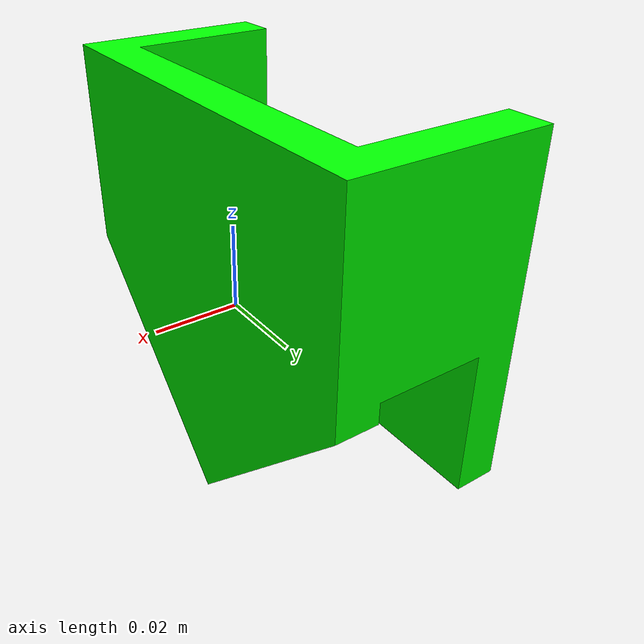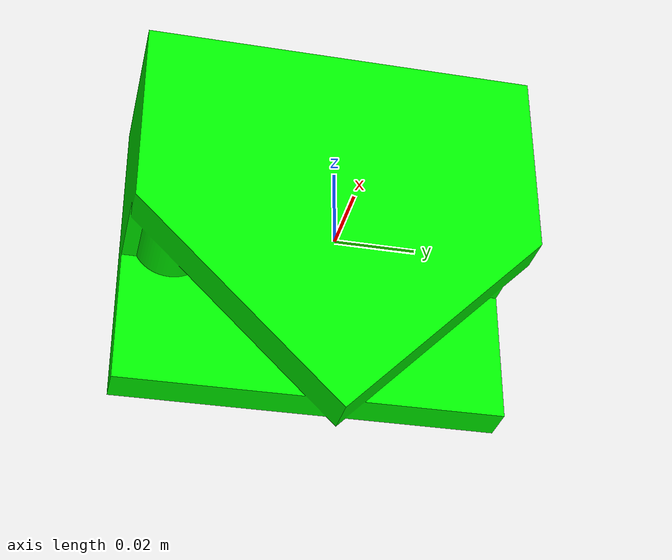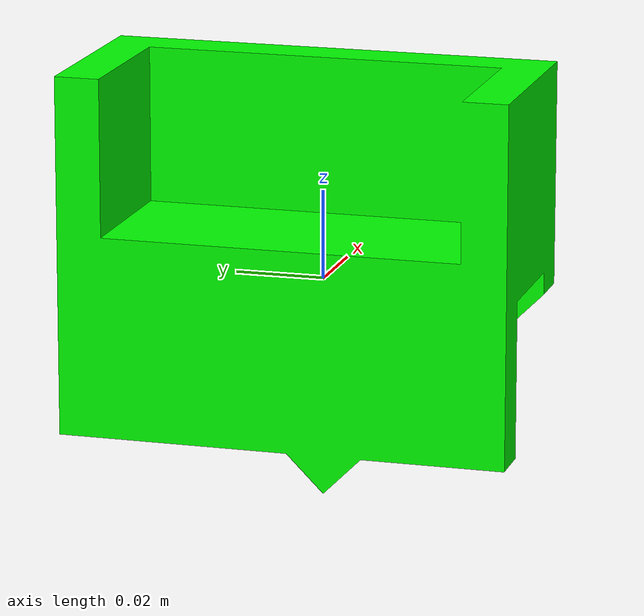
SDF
<?xml version="1.0" ?>
<sdf version="1.9">
  <model name="cursor">
    <link name="link">
      <collision name="collision">
        <geometry>
          <mesh>
            <uri>meshes/cursor.stl</uri>
            <scale>0.001 0.001 0.001</scale>
          </mesh>
        </geometry>
        <surface>
          <friction>
            <ode>
              <mu>1.0</mu>
              <mu2>1.0</mu2>
            </ode>
          </friction>
          <bounce/>
          <contact/>
        </surface>
      </collision>

      <visual name="visual">
        <geometry>
            <mesh>
              <uri>meshes/cursor.dae</uri>
              <scale>0.001 0.001 0.001</scale>
            </mesh>
        </geometry>
        <material>
          <ambient>0.0 1.0 0.0 1.0</ambient>
          <diffuse>0.0 1.0 0.0 1.0</diffuse>
          <specular>0.1 0.1 0.1 1.0</specular>
          <emissive>0.0 0.0 0.0 1.0</emissive>
        </material>
      </visual>
    </link>
  </model>
</sdf>
